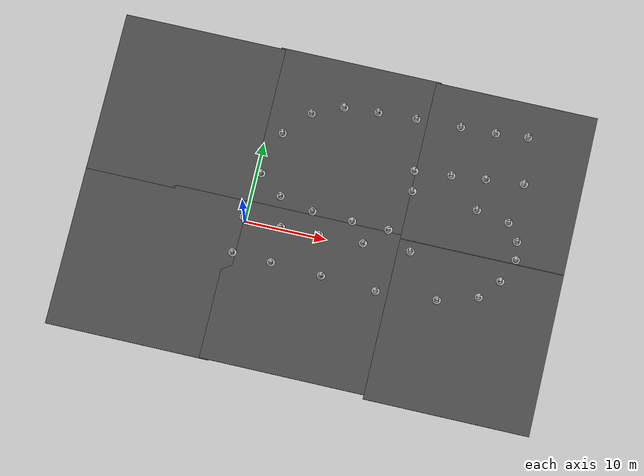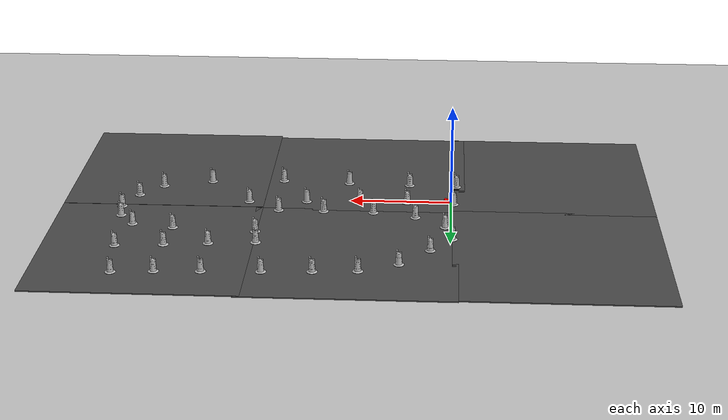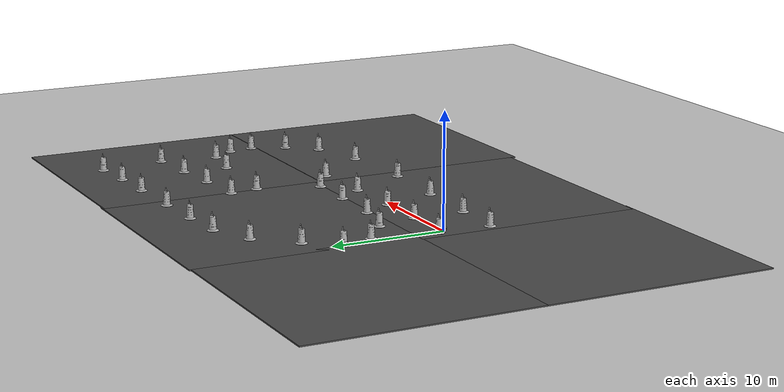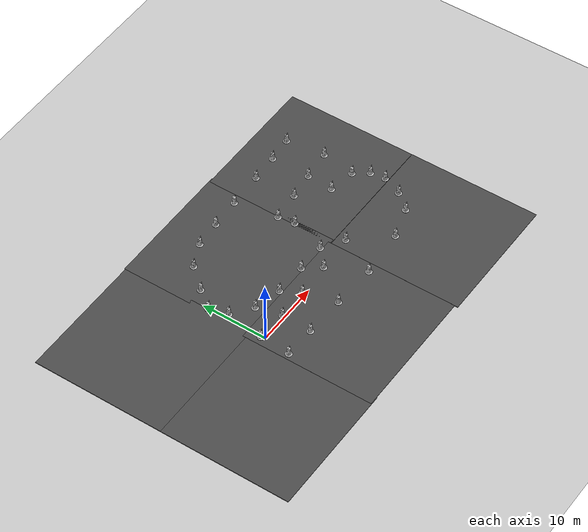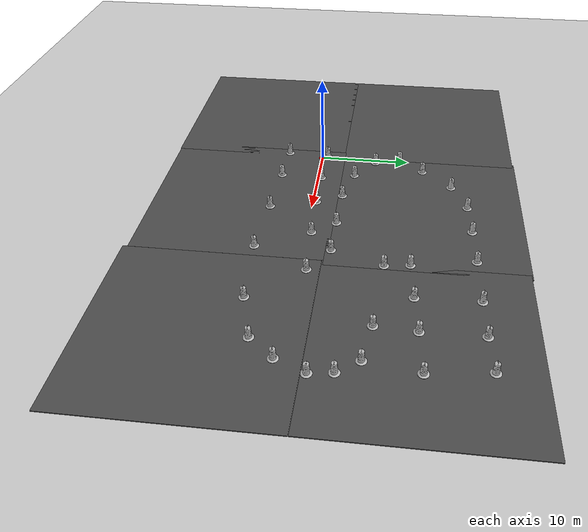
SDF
<sdf version="1.7">
 <world name="default">
  <model name="ground_plane">
   <static>1</static>
   <link name="link">
    <collision name="collision">
     <geometry><plane><normal>0 0 1</normal><size>100 100</size></plane></geometry>
     <surface><friction><ode><mu>100</mu><mu2>50</mu2></ode></friction></surface>
    </collision>
    <visual name="visual">
     <cast_shadows>0</cast_shadows>
     <geometry><plane><normal>0 0 1</normal><size>100 100</size></plane></geometry>
     <material>
      <script><uri>file://media/materials/scripts/gazebo.material</uri><name>Gazebo/Grey</name></script>
     </material>
    </visual>
   </link>
  </model>
  <model name="asphalt_plane">
   <static>1</static>
   <link name="link">
    <collision name="collision">
     <geometry><box><size>20 20 0.1</size></box></geometry>
     <surface><friction><ode><mu>100</mu><mu2>50</mu2></ode></friction></surface>
    </collision>
    <visual name="visual">
     <cast_shadows>0</cast_shadows>
     <geometry><box><size>20 20 0.1</size></box></geometry>
     <material>
      <script>
       <uri>model://asphalt_plane/materials/scripts</uri>
       <uri>model://asphalt_plane/materials/textures</uri>
       <name>vrc/asphalt</name>
      </script>
     </material>
    </visual>
   </link>
   <pose>-10.1692 -7.43707 0 0 -0 0</pose>
  </model>
  <model name="asphalt_plane_clone">
   <static>1</static>
   <link name="link">
    <collision name="collision">
     <geometry><box><size>20 20 0.1</size></box></geometry>
     <surface><friction><ode><mu>100</mu><mu2>50</mu2></ode></friction></surface>
    </collision>
    <visual name="visual">
     <cast_shadows>0</cast_shadows>
     <geometry><box><size>20 20 0.1</size></box></geometry>
     <material>
      <script>
       <uri>model://asphalt_plane/materials/scripts</uri>
       <uri>model://asphalt_plane/materials/textures</uri>
       <name>vrc/asphalt</name>
      </script>
     </material>
    </visual>
   </link>
   <pose>-10.1603 12.171 0 0 -0 0</pose>
  </model>
  <model name="asphalt_plane_clone_clone_0">
   <static>1</static>
   <link name="link">
    <collision name="collision">
     <geometry><box><size>20 20 0.1</size></box></geometry>
     <surface><friction><ode><mu>100</mu><mu2>50</mu2></ode></friction></surface>
    </collision>
    <visual name="visual">
     <cast_shadows>0</cast_shadows>
     <geometry><box><size>20 20 0.1</size></box></geometry>
     <material>
      <script>
       <uri>model://asphalt_plane/materials/scripts</uri>
       <uri>model://asphalt_plane/materials/textures</uri>
       <name>vrc/asphalt</name>
      </script>
     </material>
    </visual>
   </link>
   <pose>8.60996 -7.34898 0 0 -0 0</pose>
  </model>
  <light name="sun" type="directional">
   <pose>0 0 10 0 -0 0</pose>
   <diffuse>0.8 0.8 0.8 1</diffuse>
   <specular>0.2 0.2 0.2 1</specular>
   <attenuation>
    <range>1000</range>
    <constant>0.9</constant>
    <linear>0.01</linear>
    <quadratic>0.001</quadratic>
   </attenuation>
   <direction>-0.5 0.1 -0.9</direction>
   <spot><inner_angle>0</inner_angle><outer_angle>0</outer_angle><falloff>0</falloff></spot>
  </light>
  <gravity>0 0 -9.8</gravity>
  <magnetic_field>6e-06 2.3e-05 -4.2e-05</magnetic_field>
  <atmosphere type="adiabatic"/>
  <physics name="default_physics" default="0" type="ode">
   <max_step_size>0.001</max_step_size>
   <real_time_factor>1</real_time_factor>
   <real_time_update_rate>1000</real_time_update_rate>
  </physics>
  <scene><ambient>0.4 0.4 0.4 1</ambient><background>0.7 0.7 0.7 1</background><shadows>1</shadows></scene>
  <audio><device>default</device></audio>
  <spherical_coordinates>
   <surface_model>EARTH_WGS84</surface_model>
   <latitude_deg>47.8406</latitude_deg>
   <longitude_deg>10.6199</longitude_deg>
   <elevation>740</elevation>
   <heading_deg>180</heading_deg>
  </spherical_coordinates>
  <model name="basic_mobile_bot">
   <static>0</static>
   <pose>0.334198 -0.104111 0.24 -3e-06 -0 -0.28538</pose>
   <link name="base_footprint">
    <inertial>
     <inertia><ixx>1</ixx><ixy>0</ixy><ixz>0</ixz><iyy>1</iyy><iyz>0</iyz><izz>1</izz></inertia>
     <mass>1</mass>
    </inertial>
   </link>
   <link name="base_link">
    <collision name="base_collision">
     <pose>0 0 0.1 0 -0 0</pose>
     <geometry><box><size>0.7 0.39 0.2</size></box></geometry>
    </collision>
    <visual name="base_visual">
     <pose>0 0 -0.05 1.5708 -0 -3.14159</pose>
     <geometry>
      <mesh><uri>model://basic_mobile_bot_description/meshes/robot_base.stl</uri><scale>1 1 1</scale></mesh>
     </geometry>
     <material>
      <ambient>1 0 0 1</ambient>
      <diffuse>1 0 0 1</diffuse>
      <specular>0 0 0 1</specular>
      <emissive>0 0 0 1</emissive>
     </material>
    </visual>
    <inertial>
     <inertia><ixx>1</ixx><ixy>0</ixy><ixz>0</ixz><iyy>1</iyy><iyz>0</iyz><izz>1</izz></inertia>
     <mass>1</mass>
    </inertial>
   </link>
   <link name="imu_link">
    <sensor name="bmb_imu" type="imu">
     <always_on>1</always_on>
     <update_rate>100</update_rate>
     <visualize>1</visualize>
     <imu>
      <angular_velocity>
       <x><noise type="gaussian"><mean>0</mean><stddev>0.0002</stddev></noise></x>
       <y><noise type="gaussian"><mean>0</mean><stddev>0.0002</stddev></noise></y>
       <z><noise type="gaussian"><mean>0</mean><stddev>0.0002</stddev></noise></z>
      </angular_velocity>
      <linear_acceleration>
       <x><noise type="gaussian"><mean>0</mean><stddev>0.017</stddev></noise></x>
       <y><noise type="gaussian"><mean>0</mean><stddev>0.017</stddev></noise></y>
       <z><noise type="gaussian"><mean>0</mean><stddev>0.017</stddev></noise></z>
      </linear_acceleration>
      <orientation>
       <x><noise type="gaussian"><mean>0.0</mean><stddev>2e-3</stddev></noise></x>
       <y><noise type="gaussian"><mean>0.0</mean><stddev>2e-3</stddev></noise></y>
       <z><noise type="gaussian"><mean>0.0</mean><stddev>2e-3</stddev></noise></z>
      </orientation>
     </imu>
     <plugin name="basic_mobile_bot_imu" filename="libgazebo_ros_imu_sensor.so">
      <initial_orientation_as_reference>0</initial_orientation_as_reference>
      <frame_name>imu_link</frame_name>
      <ros><namespace>/imu</namespace><remapping>~/out:=data</remapping></ros>
     </plugin>
    </sensor>
    <inertial>
     <inertia><ixx>1</ixx><ixy>0</ixy><ixz>0</ixz><iyy>1</iyy><iyz>0</iyz><izz>1</izz></inertia>
     <mass>1</mass>
    </inertial>
   </link>
   <link name="gps_link">
    <sensor name="bmb_gps" type="gps">
     <always_on>1</always_on>
     <update_rate>10</update_rate>
     <gps>
      <position_sensing>
       <horizontal><noise type="gaussian"><mean>0</mean><stddev>0.01</stddev></noise></horizontal>
       <vertical><noise type="gaussian"><mean>0</mean><stddev>1</stddev></noise></vertical>
      </position_sensing>
     </gps>
     <plugin name="basic_mobile_bot_gps" filename="libgazebo_ros_gps_sensor.so">
      <ros><remapping>~/out:=gps/fix</remapping></ros>
     </plugin>
    </sensor>
    <inertial>
     <inertia><ixx>1</ixx><ixy>0</ixy><ixz>0</ixz><iyy>1</iyy><iyz>0</iyz><izz>1</izz></inertia>
     <mass>1</mass>
    </inertial>
   </link>
   <link name="drivewhl_l_link">
    <pose>-0.221 0.23 -0.05 3.14159 1.57079 -1.57079</pose>
    <collision name="drivewhl_l_collision">
     <geometry><cylinder><radius>0.14</radius><length>0.06</length></cylinder></geometry>
    </collision>
    <visual name="drivewhl_l_visual">
     <geometry><cylinder><radius>0.14</radius><length>0.06</length></cylinder></geometry>
    </visual>
    <inertial>
     <inertia><ixx>1</ixx><ixy>0</ixy><ixz>0</ixz><iyy>1</iyy><iyz>0</iyz><izz>1</izz></inertia>
     <mass>1</mass>
    </inertial>
   </link>
   <link name="drivewhl_r_link">
    <pose>-0.221 -0.23 -0.05 3.14159 1.57079 -1.57079</pose>
    <collision name="drivewhl_r_collision">
     <geometry><cylinder><radius>0.14</radius><length>0.06</length></cylinder></geometry>
    </collision>
    <visual name="drivewhl_r_visual">
     <geometry><cylinder><radius>0.14</radius><length>0.06</length></cylinder></geometry>
    </visual>
    <inertial>
     <inertia><ixx>1</ixx><ixy>0</ixy><ixz>0</ixz><iyy>1</iyy><iyz>0</iyz><izz>1</izz></inertia>
     <mass>1</mass>
    </inertial>
   </link>
   <link name="front_caster">
    <pose>0.217 0 -0.1 0 -0 0</pose>
    <collision name="collision">
     <geometry><sphere><radius>0.09</radius></sphere></geometry>
     <surface>
      <friction><ode><mu>0.01</mu><mu2>0.01</mu2><slip1>1</slip1><slip2>1</slip2></ode></friction>
     </surface>
    </collision>
    <visual name="front_caster_visual"><geometry><sphere><radius>0.09</radius></sphere></geometry></visual>
    <inertial>
     <inertia><ixx>1</ixx><ixy>0</ixy><ixz>0</ixz><iyy>1</iyy><iyz>0</iyz><izz>1</izz></inertia>
     <mass>1</mass>
    </inertial>
   </link>
   <joint name="base_joint" type="fixed"><parent>base_footprint</parent><child>base_link</child></joint>
   <joint name="drivewhl_l_joint" type="revolute">
    <parent>base_link</parent>
    <child>drivewhl_l_link</child>
    <axis>
     <xyz>0 0 1</xyz>
     <limit><lower>-1e+16</lower><upper>1e+16</upper></limit>
     <dynamics><spring_reference>0</spring_reference><spring_stiffness>0</spring_stiffness></dynamics>
    </axis>
   </joint>
   <joint name="drivewhl_r_joint" type="revolute">
    <parent>base_link</parent>
    <child>drivewhl_r_link</child>
    <axis>
     <xyz>0 0 1</xyz>
     <limit><lower>-1e+16</lower><upper>1e+16</upper></limit>
     <dynamics><spring_reference>0</spring_reference><spring_stiffness>0</spring_stiffness></dynamics>
    </axis>
   </joint>
   <joint name="caster_joint" type="fixed"><parent>base_link</parent><child>front_caster</child></joint>
   <joint name="imu_joint" type="fixed"><parent>base_link</parent><child>imu_link</child></joint>
   <joint name="gps_joint" type="fixed"><parent>base_link</parent><child>gps_link</child></joint>
   <plugin name="basic_mobile_bot_diff_drive" filename="libgazebo_ros_diff_drive.so">
    <update_rate>30</update_rate>
    <left_joint>drivewhl_l_joint</left_joint>
    <right_joint>drivewhl_r_joint</right_joint>
    <wheel_separation>0.52</wheel_separation>
    <wheel_diameter>0.28</wheel_diameter>
    <max_wheel_torque>20</max_wheel_torque>
    <max_wheel_acceleration>1.0</max_wheel_acceleration>
    <command_topic>cmd_vel</command_topic>
    <publish_odom>1</publish_odom>
    <publish_odom_tf>0</publish_odom_tf>
    <publish_wheel_tf>0</publish_wheel_tf>
    <odometry_topic>odom</odometry_topic>
    <odometry_frame>odom</odometry_frame>
    <robot_base_frame>base_footprint</robot_base_frame>
    <odometry_source>0</odometry_source>
    <ros><remapping>odom:=wheel/odometry</remapping></ros>
   </plugin>
   <plugin name="basic_mobile_bot_joint_state" filename="libgazebo_ros_joint_state_publisher.so">
    <ros><remapping>~/out:=joint_states</remapping></ros>
    <update_rate>30</update_rate>
    <joint_name>drivewhl_l_joint</joint_name>
    <joint_name>drivewhl_r_joint</joint_name>
   </plugin>
  </model>
  <model name="asphalt_plane_clone_clone_clone">
   <static>1</static>
   <link name="link">
    <collision name="collision">
     <geometry><box><size>20 20 0.1</size></box></geometry>
     <surface><friction><ode><mu>100</mu><mu2>50</mu2></ode></friction></surface>
    </collision>
    <visual name="visual">
     <cast_shadows>0</cast_shadows>
     <geometry><box><size>20 20 0.1</size></box></geometry>
     <material>
      <script>
       <uri>model://asphalt_plane/materials/scripts</uri>
       <uri>model://asphalt_plane/materials/textures</uri>
       <name>vrc/asphalt</name>
      </script>
     </material>
    </visual>
   </link>
   <pose>28.6062 12.2048 0 0 -0 0</pose>
  </model>
  <model name="asphalt_plane_clone_clone_clone_0">
   <static>1</static>
   <link name="link">
    <collision name="collision">
     <geometry><box><size>20 20 0.1</size></box></geometry>
     <surface><friction><ode><mu>100</mu><mu2>50</mu2></ode></friction></surface>
    </collision>
    <visual name="visual">
     <cast_shadows>0</cast_shadows>
     <geometry><box><size>20 20 0.1</size></box></geometry>
     <material>
      <script>
       <uri>model://asphalt_plane/materials/scripts</uri>
       <uri>model://asphalt_plane/materials/textures</uri>
       <name>vrc/asphalt</name>
      </script>
     </material>
    </visual>
   </link>
   <pose>28.6108 -7.83802 0 0 -0 0</pose>
  </model>
  <model name="Construction Barrel_0_clone_5_clone_1_clone">
   <link name="link">
    <inertial>
     <pose>0 0 0.4 0 -0 0</pose>
     <mass>500</mass>
     <inertia><ixx>51.2096</ixx><iyy>51.2096</iyy><izz>25</izz><ixy>0</ixy><ixz>0</ixz><iyz>0</iyz></inertia>
    </inertial>
    <collision name="collision">
     <geometry><mesh><uri>model://construction_barrel/meshes/construction_barrel.dae</uri></mesh></geometry>
    </collision>
    <visual name="visual">
     <geometry><mesh><uri>model://construction_barrel/meshes/construction_barrel.dae</uri></mesh></geometry>
    </visual>
   </link>
   <pose>30.8975 17.9193 0.049999 -2e-06 -4e-06 0.000251</pose>
  </model>
  <model name="Construction Barrel_0_clone_5_clone_1_clone_0">
   <link name="link">
    <inertial>
     <pose>0 0 0.4 0 -0 0</pose>
     <mass>500</mass>
     <inertia><ixx>51.2096</ixx><iyy>51.2096</iyy><izz>25</izz><ixy>0</ixy><ixz>0</ixz><iyz>0</iyz></inertia>
    </inertial>
    <collision name="collision">
     <geometry><mesh><uri>model://construction_barrel/meshes/construction_barrel.dae</uri></mesh></geometry>
    </collision>
    <visual name="visual">
     <geometry><mesh><uri>model://construction_barrel/meshes/construction_barrel.dae</uri></mesh></geometry>
    </visual>
   </link>
   <pose>27.0002 17.5546 0.049999 2e-06 -0 0.000249</pose>
  </model>
  <model name="Construction Barrel_0_clone_5_clone_1_clone_1">
   <link name="link">
    <inertial>
     <pose>0 0 0.4 0 -0 0</pose>
     <mass>500</mass>
     <inertia><ixx>51.2096</ixx><iyy>51.2096</iyy><izz>25</izz><ixy>0</ixy><ixz>0</ixz><iyz>0</iyz></inertia>
    </inertial>
    <collision name="collision">
     <geometry><mesh><uri>model://construction_barrel/meshes/construction_barrel.dae</uri></mesh></geometry>
    </collision>
    <visual name="visual">
     <geometry><mesh><uri>model://construction_barrel/meshes/construction_barrel.dae</uri></mesh></geometry>
    </visual>
   </link>
   <pose>22.7174 17.3588 0.049999 -1e-06 -3e-06 0.000238</pose>
  </model>
  <model name="Construction Barrel_0_clone_5_clone_1_clone_2">
   <link name="link">
    <inertial>
     <pose>0 0 0.4 0 -0 0</pose>
     <mass>500</mass>
     <inertia><ixx>51.2096</ixx><iyy>51.2096</iyy><izz>25</izz><ixy>0</ixy><ixz>0</ixz><iyz>0</iyz></inertia>
    </inertial>
    <collision name="collision">
     <geometry><mesh><uri>model://construction_barrel/meshes/construction_barrel.dae</uri></mesh></geometry>
    </collision>
    <visual name="visual">
     <geometry><mesh><uri>model://construction_barrel/meshes/construction_barrel.dae</uri></mesh></geometry>
    </visual>
   </link>
   <pose>17.2426 17.1382 0.049999 3e-06 -0 -0.018029</pose>
  </model>
  <model name="Construction Barrel_0_clone_5_clone_1_clone_3">
   <link name="link">
    <inertial>
     <pose>0 0 0.4 0 -0 0</pose>
     <mass>500</mass>
     <inertia><ixx>51.2096</ixx><iyy>51.2096</iyy><izz>25</izz><ixy>0</ixy><ixz>0</ixz><iyz>0</iyz></inertia>
    </inertial>
    <collision name="collision">
     <geometry><mesh><uri>model://construction_barrel/meshes/construction_barrel.dae</uri></mesh></geometry>
    </collision>
    <visual name="visual">
     <geometry><mesh><uri>model://construction_barrel/meshes/construction_barrel.dae</uri></mesh></geometry>
    </visual>
   </link>
   <pose>12.5792 16.9012 0.049999 3e-06 -0 0.002506</pose>
  </model>
  <model name="Construction Barrel_0_clone_5_clone_1_clone_4">
   <link name="link">
    <inertial>
     <pose>0 0 0.4 0 -0 0</pose>
     <mass>500</mass>
     <inertia><ixx>51.2096</ixx><iyy>51.2096</iyy><izz>25</izz><ixy>0</ixy><ixz>0</ixz><iyz>0</iyz></inertia>
    </inertial>
    <collision name="collision">
     <geometry><mesh><uri>model://construction_barrel/meshes/construction_barrel.dae</uri></mesh></geometry>
    </collision>
    <visual name="visual">
     <geometry><mesh><uri>model://construction_barrel/meshes/construction_barrel.dae</uri></mesh></geometry>
    </visual>
   </link>
   <pose>8.43384 16.5865 0.049999 3e-06 0 0.000569</pose>
  </model>
  <model name="Construction Barrel_0_clone_5_clone_1_clone_5">
   <link name="link">
    <inertial>
     <pose>0 0 0.4 0 -0 0</pose>
     <mass>500</mass>
     <inertia><ixx>51.2096</ixx><iyy>51.2096</iyy><izz>25</izz><ixy>0</ixy><ixz>0</ixz><iyz>0</iyz></inertia>
    </inertial>
    <collision name="collision">
     <geometry><mesh><uri>model://construction_barrel/meshes/construction_barrel.dae</uri></mesh></geometry>
    </collision>
    <visual name="visual">
     <geometry><mesh><uri>model://construction_barrel/meshes/construction_barrel.dae</uri></mesh></geometry>
    </visual>
   </link>
   <pose>4.74619 14.9461 0.049999 3e-06 -0 0.003153</pose>
  </model>
  <model name="asphalt_plane_clone_clone_clone_clone">
   <static>1</static>
   <link name="link">
    <collision name="collision">
     <geometry><box><size>20 20 0.1</size></box></geometry>
     <surface><friction><ode><mu>100</mu><mu2>50</mu2></ode></friction></surface>
    </collision>
    <visual name="visual">
     <cast_shadows>0</cast_shadows>
     <geometry><box><size>20 20 0.1</size></box></geometry>
     <material>
      <script>
       <uri>model://asphalt_plane/materials/scripts</uri>
       <uri>model://asphalt_plane/materials/textures</uri>
       <name>vrc/asphalt</name>
      </script>
     </material>
    </visual>
   </link>
   <pose>9.26501 12.3201 0 0 -0 0</pose>
  </model>
  <model name="Construction Barrel_0_clone_5_clone_1_clone_5_clone">
   <link name="link">
    <inertial>
     <pose>0 0 0.4 0 -0 0</pose>
     <mass>500</mass>
     <inertia><ixx>51.2096</ixx><iyy>51.2096</iyy><izz>25</izz><ixy>0</ixy><ixz>0</ixz><iyz>0</iyz></inertia>
    </inertial>
    <collision name="collision">
     <geometry><mesh><uri>model://construction_barrel/meshes/construction_barrel.dae</uri></mesh></geometry>
    </collision>
    <visual name="visual">
     <geometry><mesh><uri>model://construction_barrel/meshes/construction_barrel.dae</uri></mesh></geometry>
    </visual>
   </link>
   <pose>1.90209 11.7422 0.049999 -1e-06 -2e-06 0.003153</pose>
  </model>
  <model name="Construction Barrel_0_clone_5_clone_1_clone_5_clone_0">
   <link name="link">
    <inertial>
     <pose>0 0 0.4 0 -0 0</pose>
     <mass>500</mass>
     <inertia><ixx>51.2096</ixx><iyy>51.2096</iyy><izz>25</izz><ixy>0</ixy><ixz>0</ixz><iyz>0</iyz></inertia>
    </inertial>
    <collision name="collision">
     <geometry><mesh><uri>model://construction_barrel/meshes/construction_barrel.dae</uri></mesh></geometry>
    </collision>
    <visual name="visual">
     <geometry><mesh><uri>model://construction_barrel/meshes/construction_barrel.dae</uri></mesh></geometry>
    </visual>
   </link>
   <pose>-0.163551 9.05635 0.05 0 -0 0.003032</pose>
  </model>
  <model name="Construction Barrel_0_clone_5_clone_1_clone_5_clone_1">
   <link name="link">
    <inertial>
     <pose>0 0 0.4 0 -0 0</pose>
     <mass>500</mass>
     <inertia><ixx>51.2096</ixx><iyy>51.2096</iyy><izz>25</izz><ixy>0</ixy><ixz>0</ixz><iyz>0</iyz></inertia>
    </inertial>
    <collision name="collision">
     <geometry><mesh><uri>model://construction_barrel/meshes/construction_barrel.dae</uri></mesh></geometry>
    </collision>
    <visual name="visual">
     <geometry><mesh><uri>model://construction_barrel/meshes/construction_barrel.dae</uri></mesh></geometry>
    </visual>
   </link>
   <pose>0.550043 6.27344 0.049999 -1e-06 -3e-06 0.003149</pose>
  </model>
  <model name="Construction Barrel_0_clone_5_clone_1_clone_5_clone_2">
   <link name="link">
    <inertial>
     <pose>0 0 0.4 0 -0 0</pose>
     <mass>500</mass>
     <inertia><ixx>51.2096</ixx><iyy>51.2096</iyy><izz>25</izz><ixy>0</ixy><ixz>0</ixz><iyz>0</iyz></inertia>
    </inertial>
    <collision name="collision">
     <geometry><mesh><uri>model://construction_barrel/meshes/construction_barrel.dae</uri></mesh></geometry>
    </collision>
    <visual name="visual">
     <geometry><mesh><uri>model://construction_barrel/meshes/construction_barrel.dae</uri></mesh></geometry>
    </visual>
   </link>
   <pose>3.45571 4.04946 0.049999 -1e-06 -3e-06 0.003135</pose>
  </model>
  <model name="Construction Barrel_0_clone_5_clone_1_clone_5_clone_3">
   <link name="link">
    <inertial>
     <pose>0 0 0.4 0 -0 0</pose>
     <mass>500</mass>
     <inertia><ixx>51.2096</ixx><iyy>51.2096</iyy><izz>25</izz><ixy>0</ixy><ixz>0</ixz><iyz>0</iyz></inertia>
    </inertial>
    <collision name="collision">
     <geometry><mesh><uri>model://construction_barrel/meshes/construction_barrel.dae</uri></mesh></geometry>
    </collision>
    <visual name="visual">
     <geometry><mesh><uri>model://construction_barrel/meshes/construction_barrel.dae</uri></mesh></geometry>
    </visual>
   </link>
   <pose>7.61543 3.07341 0.04999 0 -0 0.002691</pose>
  </model>
  <model name="Construction Barrel_0_clone_5_clone_1_clone_5_clone_4">
   <link name="link">
    <inertial>
     <pose>0 0 0.4 0 -0 0</pose>
     <mass>500</mass>
     <inertia><ixx>51.2096</ixx><iyy>51.2096</iyy><izz>25</izz><ixy>0</ixy><ixz>0</ixz><iyz>0</iyz></inertia>
    </inertial>
    <collision name="collision">
     <geometry><mesh><uri>model://construction_barrel/meshes/construction_barrel.dae</uri></mesh></geometry>
    </collision>
    <visual name="visual">
     <geometry><mesh><uri>model://construction_barrel/meshes/construction_barrel.dae</uri></mesh></geometry>
    </visual>
   </link>
   <pose>12.541 2.94951 0.049998 6e-06 -4e-06 0.003251</pose>
  </model>
  <model name="Construction Barrel_0_clone_5_clone_1_clone_5_clone_5">
   <link name="link">
    <inertial>
     <pose>0 0 0.4 0 -0 0</pose>
     <mass>500</mass>
     <inertia><ixx>51.2096</ixx><iyy>51.2096</iyy><izz>25</izz><ixy>0</ixy><ixz>0</ixz><iyz>0</iyz></inertia>
    </inertial>
    <collision name="collision">
     <geometry><mesh><uri>model://construction_barrel/meshes/construction_barrel.dae</uri></mesh></geometry>
    </collision>
    <visual name="visual">
     <geometry><mesh><uri>model://construction_barrel/meshes/construction_barrel.dae</uri></mesh></geometry>
    </visual>
   </link>
   <pose>16.9963 2.89535 0.049999 0 -4e-06 0.003038</pose>
  </model>
  <model name="Construction Barrel_0_clone_5_clone_1_clone_5_clone_6">
   <link name="link">
    <inertial>
     <pose>0 0 0.4 0 -0 0</pose>
     <mass>500</mass>
     <inertia><ixx>51.2096</ixx><iyy>51.2096</iyy><izz>25</izz><ixy>0</ixy><ixz>0</ixz><iyz>0</iyz></inertia>
    </inertial>
    <collision name="collision">
     <geometry><mesh><uri>model://construction_barrel/meshes/construction_barrel.dae</uri></mesh></geometry>
    </collision>
    <visual name="visual">
     <geometry><mesh><uri>model://construction_barrel/meshes/construction_barrel.dae</uri></mesh></geometry>
    </visual>
   </link>
   <pose>20.1334 0.87675 0.049999 -1e-06 -3e-06 0.003131</pose>
  </model>
  <model name="Construction Barrel_0_clone_5_clone_1_clone_5_clone_9">
   <link name="link">
    <inertial>
     <pose>0 0 0.4 0 -0 0</pose>
     <mass>500</mass>
     <inertia><ixx>51.2096</ixx><iyy>51.2096</iyy><izz>25</izz><ixy>0</ixy><ixz>0</ixz><iyz>0</iyz></inertia>
    </inertial>
    <collision name="collision">
     <geometry><mesh><uri>model://construction_barrel/meshes/construction_barrel.dae</uri></mesh></geometry>
    </collision>
    <visual name="visual">
     <geometry><mesh><uri>model://construction_barrel/meshes/construction_barrel.dae</uri></mesh></geometry>
    </visual>
   </link>
   <pose>31.6271 12.1033 0.049999 -1e-06 -2e-06 0.003116</pose>
  </model>
  <model name="Construction Barrel_0_clone_5_clone_1_clone_5_clone_10">
   <link name="link">
    <inertial>
     <pose>0 0 0.4 0 -0 0</pose>
     <mass>500</mass>
     <inertia><ixx>51.2096</ixx><iyy>51.2096</iyy><izz>25</izz><ixy>0</ixy><ixz>0</ixz><iyz>0</iyz></inertia>
    </inertial>
    <collision name="collision">
     <geometry><mesh><uri>model://construction_barrel/meshes/construction_barrel.dae</uri></mesh></geometry>
    </collision>
    <visual name="visual">
     <geometry><mesh><uri>model://construction_barrel/meshes/construction_barrel.dae</uri></mesh></geometry>
    </visual>
   </link>
   <pose>27.0575 11.6688 0.049999 -1e-06 -2e-06 0.003121</pose>
  </model>
  <model name="Construction Barrel_0_clone_5_clone_1_clone_5_clone_11">
   <link name="link">
    <inertial>
     <pose>0 0 0.4 0 -0 0</pose>
     <mass>500</mass>
     <inertia><ixx>51.2096</ixx><iyy>51.2096</iyy><izz>25</izz><ixy>0</ixy><ixz>0</ixz><iyz>0</iyz></inertia>
    </inertial>
    <collision name="collision">
     <geometry><mesh><uri>model://construction_barrel/meshes/construction_barrel.dae</uri></mesh></geometry>
    </collision>
    <visual name="visual">
     <geometry><mesh><uri>model://construction_barrel/meshes/construction_barrel.dae</uri></mesh></geometry>
    </visual>
   </link>
   <pose>22.8896 11.1763 0.049999 3e-06 -0 0.003116</pose>
  </model>
  <model name="Construction Barrel_0_clone_5_clone_1_clone_5_clone_15">
   <link name="link">
    <inertial>
     <pose>0 0 0.4 0 -0 0</pose>
     <mass>500</mass>
     <inertia><ixx>51.2096</ixx><iyy>51.2096</iyy><izz>25</izz><ixy>0</ixy><ixz>0</ixz><iyz>0</iyz></inertia>
    </inertial>
    <collision name="collision">
     <geometry><mesh><uri>model://construction_barrel/meshes/construction_barrel.dae</uri></mesh></geometry>
    </collision>
    <visual name="visual">
     <geometry><mesh><uri>model://construction_barrel/meshes/construction_barrel.dae</uri></mesh></geometry>
    </visual>
   </link>
   <pose>26.8007 7.67007 0.049999 3e-06 -0 0.003104</pose>
  </model>
  <model name="Construction Barrel_0_clone_5_clone_1_clone_5_clone_17">
   <link name="link">
    <inertial>
     <pose>0 0 0.4 0 -0 0</pose>
     <mass>500</mass>
     <inertia><ixx>51.2096</ixx><iyy>51.2096</iyy><izz>25</izz><ixy>0</ixy><ixz>0</ixz><iyz>0</iyz></inertia>
    </inertial>
    <collision name="collision">
     <geometry><mesh><uri>model://construction_barrel/meshes/construction_barrel.dae</uri></mesh></geometry>
    </collision>
    <visual name="visual">
     <geometry><mesh><uri>model://construction_barrel/meshes/construction_barrel.dae</uri></mesh></geometry>
    </visual>
   </link>
   <pose>30.8317 6.99659 0.049999 3e-06 -0 0.003096</pose>
  </model>
  <model name="Construction Barrel_0_clone_5_clone_1_clone_5_clone_18">
   <link name="link">
    <inertial>
     <pose>0 0 0.4 0 -0 0</pose>
     <mass>500</mass>
     <inertia><ixx>51.2096</ixx><iyy>51.2096</iyy><izz>25</izz><ixy>0</ixy><ixz>0</ixz><iyz>0</iyz></inertia>
    </inertial>
    <collision name="collision">
     <geometry><mesh><uri>model://construction_barrel/meshes/construction_barrel.dae</uri></mesh></geometry>
    </collision>
    <visual name="visual">
     <geometry><mesh><uri>model://construction_barrel/meshes/construction_barrel.dae</uri></mesh></geometry>
    </visual>
   </link>
   <pose>32.3161 4.93048 0.049999 -1e-06 -2e-06 0.003083</pose>
  </model>
  <model name="Construction Barrel_0_clone_5_clone_1_clone_5_clone_19">
   <link name="link">
    <inertial>
     <pose>0 0 0.4 0 -0 0</pose>
     <mass>500</mass>
     <inertia><ixx>51.2096</ixx><iyy>51.2096</iyy><izz>25</izz><ixy>0</ixy><ixz>0</ixz><iyz>0</iyz></inertia>
    </inertial>
    <collision name="collision">
     <geometry><mesh><uri>model://construction_barrel/meshes/construction_barrel.dae</uri></mesh></geometry>
    </collision>
    <visual name="visual">
     <geometry><mesh><uri>model://construction_barrel/meshes/construction_barrel.dae</uri></mesh></geometry>
    </visual>
   </link>
   <pose>32.6325 2.69449 0.049999 4e-06 -1e-06 0.003114</pose>
  </model>
  <model name="Construction Barrel_0_clone_5_clone_1_clone_5_clone_20">
   <link name="link">
    <inertial>
     <pose>0 0 0.4 0 -0 0</pose>
     <mass>500</mass>
     <inertia><ixx>51.2096</ixx><iyy>51.2096</iyy><izz>25</izz><ixy>0</ixy><ixz>0</ixz><iyz>0</iyz></inertia>
    </inertial>
    <collision name="collision">
     <geometry><mesh><uri>model://construction_barrel/meshes/construction_barrel.dae</uri></mesh></geometry>
    </collision>
    <visual name="visual">
     <geometry><mesh><uri>model://construction_barrel/meshes/construction_barrel.dae</uri></mesh></geometry>
    </visual>
   </link>
   <pose>31.3845 -0.278409 0.049999 4e-06 -0 0.003089</pose>
  </model>
  <model name="Construction Barrel_0_clone_5_clone_1_clone_5_clone_21">
   <link name="link">
    <inertial>
     <pose>0 0 0.4 0 -0 0</pose>
     <mass>500</mass>
     <inertia><ixx>51.2096</ixx><iyy>51.2096</iyy><izz>25</izz><ixy>0</ixy><ixz>0</ixz><iyz>0</iyz></inertia>
    </inertial>
    <collision name="collision">
     <geometry><mesh><uri>model://construction_barrel/meshes/construction_barrel.dae</uri></mesh></geometry>
    </collision>
    <visual name="visual">
     <geometry><mesh><uri>model://construction_barrel/meshes/construction_barrel.dae</uri></mesh></geometry>
    </visual>
   </link>
   <pose>29.2972 -2.77161 0.049999 3e-06 -0 0.003082</pose>
  </model>
  <model name="Construction Barrel_0_clone_5_clone_1_clone_5_clone_22">
   <link name="link">
    <inertial>
     <pose>0 0 0.4 0 -0 0</pose>
     <mass>500</mass>
     <inertia><ixx>51.2096</ixx><iyy>51.2096</iyy><izz>25</izz><ixy>0</ixy><ixz>0</ixz><iyz>0</iyz></inertia>
    </inertial>
    <collision name="collision">
     <geometry><mesh><uri>model://construction_barrel/meshes/construction_barrel.dae</uri></mesh></geometry>
    </collision>
    <visual name="visual">
     <geometry><mesh><uri>model://construction_barrel/meshes/construction_barrel.dae</uri></mesh></geometry>
    </visual>
   </link>
   <pose>24.505 -4.22709 0.049999 -1e-06 -2e-06 0.003078</pose>
  </model>
  <model name="Construction Barrel_0_clone_5_clone_1_clone_5_clone_11_clone">
   <link name="link">
    <inertial>
     <pose>0 0 0.4 0 -0 0</pose>
     <mass>500</mass>
     <inertia><ixx>51.2096</ixx><iyy>51.2096</iyy><izz>25</izz><ixy>0</ixy><ixz>0</ixz><iyz>0</iyz></inertia>
    </inertial>
    <collision name="collision">
     <geometry><mesh><uri>model://construction_barrel/meshes/construction_barrel.dae</uri></mesh></geometry>
    </collision>
    <visual name="visual">
     <geometry><mesh><uri>model://construction_barrel/meshes/construction_barrel.dae</uri></mesh></geometry>
    </visual>
   </link>
   <pose>18.4195 10.7466 0.049999 2e-06 -0 0.003088</pose>
  </model>
  <model name="Construction Barrel_0_clone_5_clone_1_clone_5_clone_11_clone_0">
   <link name="link">
    <inertial>
     <pose>0 0 0.4 0 -0 0</pose>
     <mass>500</mass>
     <inertia><ixx>51.2096</ixx><iyy>51.2096</iyy><izz>25</izz><ixy>0</ixy><ixz>0</ixz><iyz>0</iyz></inertia>
    </inertial>
    <collision name="collision">
     <geometry><mesh><uri>model://construction_barrel/meshes/construction_barrel.dae</uri></mesh></geometry>
    </collision>
    <visual name="visual">
     <geometry><mesh><uri>model://construction_barrel/meshes/construction_barrel.dae</uri></mesh></geometry>
    </visual>
   </link>
   <pose>18.7489 8.21468 0.049999 4e-06 -0 0.003051</pose>
  </model>
  <model name="Construction Barrel_0_clone_5_clone_1_clone_5_clone_11_clone_1">
   <link name="link">
    <inertial>
     <pose>0 0 0.4 0 -0 0</pose>
     <mass>500</mass>
     <inertia><ixx>51.2096</ixx><iyy>51.2096</iyy><izz>25</izz><ixy>0</ixy><ixz>0</ixz><iyz>0</iyz></inertia>
    </inertial>
    <collision name="collision">
     <geometry><mesh><uri>model://construction_barrel/meshes/construction_barrel.dae</uri></mesh></geometry>
    </collision>
    <visual name="visual">
     <geometry><mesh><uri>model://construction_barrel/meshes/construction_barrel.dae</uri></mesh></geometry>
    </visual>
   </link>
   <pose>17.1688 -4.78596 0.049999 3e-06 -0 0.003108</pose>
  </model>
  <model name="Construction Barrel_0_clone_5_clone_1_clone_5_clone_11_clone_2">
   <link name="link">
    <inertial>
     <pose>0 0 0.4 0 -0 0</pose>
     <mass>500</mass>
     <inertia><ixx>51.2096</ixx><iyy>51.2096</iyy><izz>25</izz><ixy>0</ixy><ixz>0</ixz><iyz>0</iyz></inertia>
    </inertial>
    <collision name="collision">
     <geometry><mesh><uri>model://construction_barrel/meshes/construction_barrel.dae</uri></mesh></geometry>
    </collision>
    <visual name="visual">
     <geometry><mesh><uri>model://construction_barrel/meshes/construction_barrel.dae</uri></mesh></geometry>
    </visual>
   </link>
   <pose>14.3894 0.58439 0.049999 3e-06 -0 0.003109</pose>
  </model>
  <model name="Construction Barrel_0_clone_5_clone_1_clone_5_clone_11_clone_3">
   <link name="link">
    <inertial>
     <pose>0 0 0.4 0 -0 0</pose>
     <mass>500</mass>
     <inertia><ixx>51.2096</ixx><iyy>51.2096</iyy><izz>25</izz><ixy>0</ixy><ixz>0</ixz><iyz>0</iyz></inertia>
    </inertial>
    <collision name="collision">
     <geometry><mesh><uri>model://construction_barrel/meshes/construction_barrel.dae</uri></mesh></geometry>
    </collision>
    <visual name="visual">
     <geometry><mesh><uri>model://construction_barrel/meshes/construction_barrel.dae</uri></mesh></geometry>
    </visual>
   </link>
   <pose>9.07149 0.404089 0.049999 -1e-06 -3e-06 0.003112</pose>
  </model>
  <model name="Construction Barrel_0_clone_5_clone_1_clone_5_clone_11_clone_4">
   <link name="link">
    <inertial>
     <pose>0 0 0.4 0 -0 0</pose>
     <mass>500</mass>
     <inertia><ixx>51.2096</ixx><iyy>51.2096</iyy><izz>25</izz><ixy>0</ixy><ixz>0</ixz><iyz>0</iyz></inertia>
    </inertial>
    <collision name="collision">
     <geometry><mesh><uri>model://construction_barrel/meshes/construction_barrel.dae</uri></mesh></geometry>
    </collision>
    <visual name="visual">
     <geometry><mesh><uri>model://construction_barrel/meshes/construction_barrel.dae</uri></mesh></geometry>
    </visual>
   </link>
   <pose>10.4039 -4.43069 0.049999 3e-06 1e-06 0.003116</pose>
  </model>
  <model name="Construction Barrel_0_clone_5_clone_1_clone_5_clone_11_clone_5">
   <link name="link">
    <inertial>
     <pose>0 0 0.4 0 -0 0</pose>
     <mass>500</mass>
     <inertia><ixx>51.2096</ixx><iyy>51.2096</iyy><izz>25</izz><ixy>0</ixy><ixz>0</ixz><iyz>0</iyz></inertia>
    </inertial>
    <collision name="collision">
     <geometry><mesh><uri>model://construction_barrel/meshes/construction_barrel.dae</uri></mesh></geometry>
    </collision>
    <visual name="visual">
     <geometry><mesh><uri>model://construction_barrel/meshes/construction_barrel.dae</uri></mesh></geometry>
    </visual>
   </link>
   <pose>4.36466 0.358024 0.049999 -1e-06 -2e-06 0.003115</pose>
  </model>
  <model name="Construction Barrel_0_clone_5_clone_1_clone_5_clone_11_clone_6">
   <link name="link">
    <inertial>
     <pose>0 0 0.4 0 -0 0</pose>
     <mass>500</mass>
     <inertia><ixx>51.2096</ixx><iyy>51.2096</iyy><izz>25</izz><ixy>0</ixy><ixz>0</ixz><iyz>0</iyz></inertia>
    </inertial>
    <collision name="collision">
     <geometry><mesh><uri>model://construction_barrel/meshes/construction_barrel.dae</uri></mesh></geometry>
    </collision>
    <visual name="visual">
     <geometry><mesh><uri>model://construction_barrel/meshes/construction_barrel.dae</uri></mesh></geometry>
    </visual>
   </link>
   <pose>4.20866 -4.18412 0.049999 3e-06 -0 0.003112</pose>
  </model>
  <model name="Construction Barrel_0_clone_5_clone_1_clone_5_clone_11_clone_7">
   <link name="link">
    <inertial>
     <pose>0 0 0.4 0 -0 0</pose>
     <mass>500</mass>
     <inertia><ixx>51.2096</ixx><iyy>51.2096</iyy><izz>25</izz><ixy>0</ixy><ixz>0</ixz><iyz>0</iyz></inertia>
    </inertial>
    <collision name="collision">
     <geometry><mesh><uri>model://construction_barrel/meshes/construction_barrel.dae</uri></mesh></geometry>
    </collision>
    <visual name="visual">
     <geometry><mesh><uri>model://construction_barrel/meshes/construction_barrel.dae</uri></mesh></geometry>
    </visual>
   </link>
   <pose>-0.543262 -4.03268 0.049999 -0 -3e-06 0.003106</pose>
  </model>
  <model name="Construction Barrel_0_clone_5_clone_1_clone_5_clone_11_clone_8">
   <link name="link">
    <inertial>
     <pose>0 0 0.4 0 -0 0</pose>
     <mass>500</mass>
     <inertia><ixx>51.2096</ixx><iyy>51.2096</iyy><izz>25</izz><ixy>0</ixy><ixz>0</ixz><iyz>0</iyz></inertia>
    </inertial>
    <collision name="collision">
     <geometry><mesh><uri>model://construction_barrel/meshes/construction_barrel.dae</uri></mesh></geometry>
    </collision>
    <visual name="visual">
     <geometry><mesh><uri>model://construction_barrel/meshes/construction_barrel.dae</uri></mesh></geometry>
    </visual>
   </link>
   <pose>-0.279338 0.554136 0.05 0 -0 0.002996</pose>
  </model>
 </world>
</sdf>
